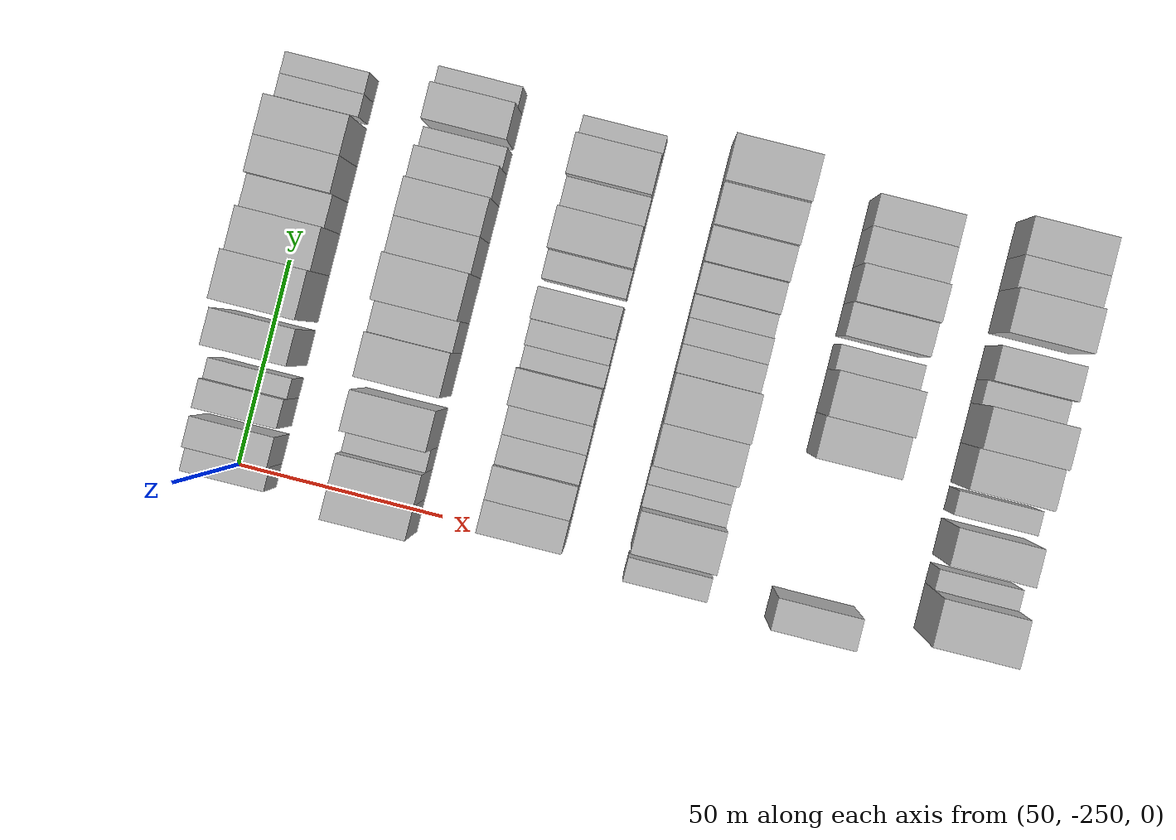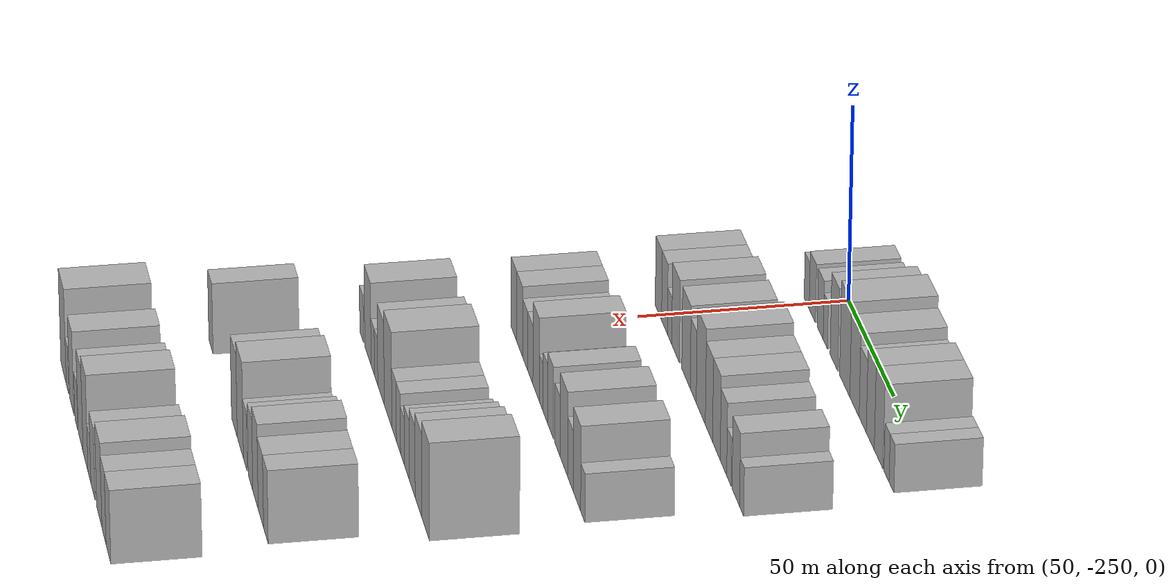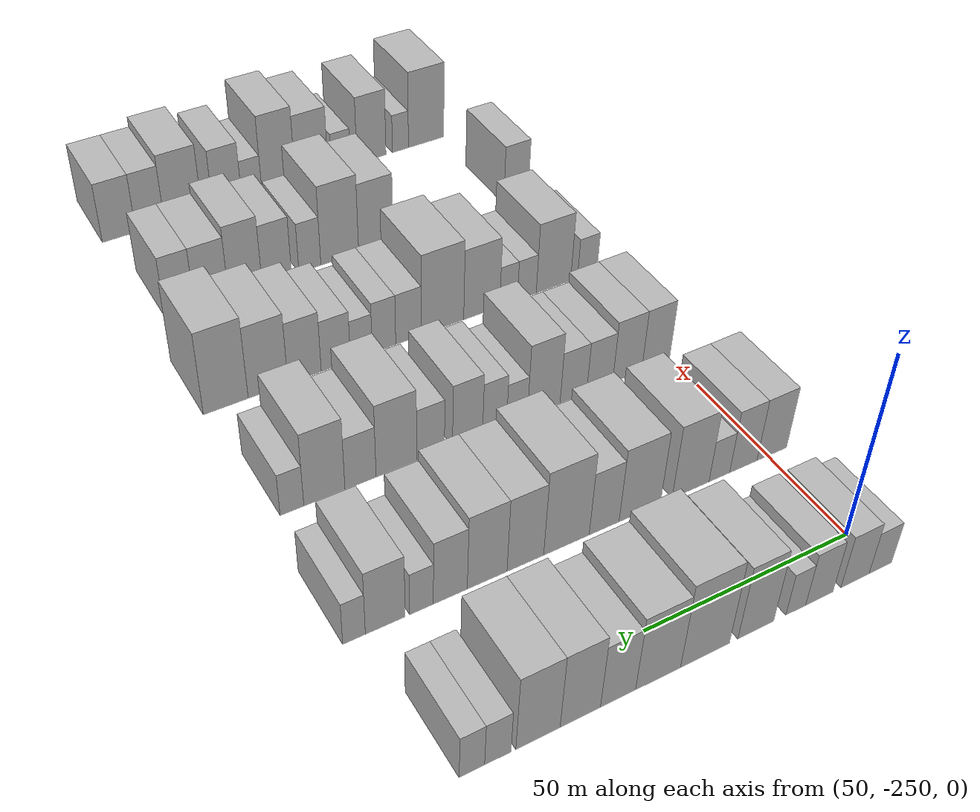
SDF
<sdf version="1.6">
 <world name="default">
  <model name="building_35">
   <static>1</static>
   <pose>50.0000 -250.0778 0 0.000000 0.000000 0.000000</pose>
   <link name="link">
    <pose>0 0 6.00 0 0 0</pose>
    <collision name="collision"><geometry><box><size>20.0000 5.8298 12.0000</size></box></geometry></collision>
    <visual name="visual">
     <cast_shadows>0</cast_shadows>
     <geometry><box><size>20.0000 5.8298 12.0000</size></box></geometry>
     <material>
      <script>
       <uri>model://HANNAS_wall/materials/scripts</uri>
       <uri>model://HANNAS_wall/materials/textures</uri>
       <name>vrc/HANNAS_wall</name>
      </script>
     </material>
    </visual>
   </link>
  </model>
  <model name="building_36">
   <static>1</static>
   <pose>50.0000 -243.5441 0 0.000000 0.000000 0.000000</pose>
   <link name="link">
    <pose>0 0 7.50 0 0 0</pose>
    <collision name="collision"><geometry><box><size>20.0000 7.2376 15.0000</size></box></geometry></collision>
    <visual name="visual">
     <cast_shadows>0</cast_shadows>
     <geometry><box><size>20.0000 7.2376 15.0000</size></box></geometry>
     <material>
      <script>
       <uri>model://HANNAS_wall/materials/scripts</uri>
       <uri>model://HANNAS_wall/materials/textures</uri>
       <name>vrc/HANNAS_wall</name>
      </script>
     </material>
    </visual>
   </link>
  </model>
  <model name="building_37">
   <static>1</static>
   <pose>50.0000 -234.4957 0 0.000000 0.000000 0.000000</pose>
   <link name="link">
    <pose>0 0 7.50 0 0 0</pose>
    <collision name="collision"><geometry><box><size>20.0000 6.8593 15.0000</size></box></geometry></collision>
    <visual name="visual">
     <cast_shadows>0</cast_shadows>
     <geometry><box><size>20.0000 6.8593 15.0000</size></box></geometry>
     <material>
      <script>
       <uri>model://HANNAS_wall/materials/scripts</uri>
       <uri>model://HANNAS_wall/materials/textures</uri>
       <name>vrc/HANNAS_wall</name>
      </script>
     </material>
    </visual>
   </link>
  </model>
  <model name="building_38">
   <static>1</static>
   <pose>50.0000 -228.6237 0 0.000000 0.000000 0.000000</pose>
   <link name="link">
    <pose>0 0 6.00 0 0 0</pose>
    <collision name="collision"><geometry><box><size>20.0000 4.8848 12.0000</size></box></geometry></collision>
    <visual name="visual">
     <cast_shadows>0</cast_shadows>
     <geometry><box><size>20.0000 4.8848 12.0000</size></box></geometry>
     <material>
      <script>
       <uri>model://HANNAS_wall/materials/scripts</uri>
       <uri>model://HANNAS_wall/materials/textures</uri>
       <name>vrc/HANNAS_wall</name>
      </script>
     </material>
    </visual>
   </link>
  </model>
  <model name="building_39">
   <static>1</static>
   <pose>50.0000 -218.8807 0 0.000000 0.000000 0.000000</pose>
   <link name="link">
    <pose>0 0 10.50 0 0 0</pose>
    <collision name="collision"><geometry><box><size>20.0000 8.6011 21.0000</size></box></geometry></collision>
    <visual name="visual">
     <cast_shadows>0</cast_shadows>
     <geometry><box><size>20.0000 8.6011 21.0000</size></box></geometry>
     <material>
      <script>
       <uri>model://HANNAS_wall/materials/scripts</uri>
       <uri>model://HANNAS_wall/materials/textures</uri>
       <name>vrc/HANNAS_wall</name>
      </script>
     </material>
    </visual>
   </link>
  </model>
  <model name="building_40">
   <static>1</static>
   <pose>50.0000 -206.8810 0 0.000000 0.000000 0.000000</pose>
   <link name="link">
    <pose>0 0 12.00 0 0 0</pose>
    <collision name="collision"><geometry><box><size>20.0000 11.3985 24.0000</size></box></geometry></collision>
    <visual name="visual">
     <cast_shadows>0</cast_shadows>
     <geometry><box><size>20.0000 11.3985 24.0000</size></box></geometry>
     <material>
      <script>
       <uri>model://HANNAS_wall/materials/scripts</uri>
       <uri>model://HANNAS_wall/materials/textures</uri>
       <name>vrc/HANNAS_wall</name>
      </script>
     </material>
    </visual>
   </link>
  </model>
  <model name="building_41">
   <static>1</static>
   <pose>50.0000 -196.0865 0 0.000000 0.000000 0.000000</pose>
   <link name="link">
    <pose>0 0 10.50 0 0 0</pose>
    <collision name="collision"><geometry><box><size>20.0000 10.1903 21.0000</size></box></geometry></collision>
    <visual name="visual">
     <cast_shadows>0</cast_shadows>
     <geometry><box><size>20.0000 10.1903 21.0000</size></box></geometry>
     <material>
      <script>
       <uri>model://HANNAS_wall/materials/scripts</uri>
       <uri>model://HANNAS_wall/materials/textures</uri>
       <name>vrc/HANNAS_wall</name>
      </script>
     </material>
    </visual>
   </link>
  </model>
  <model name="building_42">
   <static>1</static>
   <pose>50.0000 -187.1090 0 0.000000 0.000000 0.000000</pose>
   <link name="link">
    <pose>0 0 9.00 0 0 0</pose>
    <collision name="collision"><geometry><box><size>20.0000 7.7648 18.0000</size></box></geometry></collision>
    <visual name="visual">
     <cast_shadows>0</cast_shadows>
     <geometry><box><size>20.0000 7.7648 18.0000</size></box></geometry>
     <material>
      <script>
       <uri>model://HANNAS_wall/materials/scripts</uri>
       <uri>model://HANNAS_wall/materials/textures</uri>
       <name>vrc/HANNAS_wall</name>
      </script>
     </material>
    </visual>
   </link>
  </model>
  <model name="building_43">
   <static>1</static>
   <pose>50.0000 -178.8734 0 0.000000 0.000000 0.000000</pose>
   <link name="link">
    <pose>0 0 10.50 0 0 0</pose>
    <collision name="collision"><geometry><box><size>20.0000 8.7064 21.0000</size></box></geometry></collision>
    <visual name="visual">
     <cast_shadows>0</cast_shadows>
     <geometry><box><size>20.0000 8.7064 21.0000</size></box></geometry>
     <material>
      <script>
       <uri>model://HANNAS_wall/materials/scripts</uri>
       <uri>model://HANNAS_wall/materials/textures</uri>
       <name>vrc/HANNAS_wall</name>
      </script>
     </material>
    </visual>
   </link>
  </model>
  <model name="building_44">
   <static>1</static>
   <pose>50.0000 -169.8590 0 0.000000 0.000000 0.000000</pose>
   <link name="link">
    <pose>0 0 10.50 0 0 0</pose>
    <collision name="collision"><geometry><box><size>20.0000 9.3222 21.0000</size></box></geometry></collision>
    <visual name="visual">
     <cast_shadows>0</cast_shadows>
     <geometry><box><size>20.0000 9.3222 21.0000</size></box></geometry>
     <material>
      <script>
       <uri>model://HANNAS_wall/materials/scripts</uri>
       <uri>model://HANNAS_wall/materials/textures</uri>
       <name>vrc/HANNAS_wall</name>
      </script>
     </material>
    </visual>
   </link>
  </model>
  <model name="building_45">
   <static>1</static>
   <pose>50.0000 -161.4854 0 0.000000 0.000000 0.000000</pose>
   <link name="link">
    <pose>0 0 6.00 0 0 0</pose>
    <collision name="collision"><geometry><box><size>20.0000 5.4250 12.0000</size></box></geometry></collision>
    <visual name="visual">
     <cast_shadows>0</cast_shadows>
     <geometry><box><size>20.0000 5.4250 12.0000</size></box></geometry>
     <material>
      <script>
       <uri>model://HANNAS_wall/materials/scripts</uri>
       <uri>model://HANNAS_wall/materials/textures</uri>
       <name>vrc/HANNAS_wall</name>
      </script>
     </material>
    </visual>
   </link>
  </model>
  <model name="building_46">
   <static>1</static>
   <pose>50.0000 -156.1896 0 0.000000 0.000000 0.000000</pose>
   <link name="link">
    <pose>0 0 6.00 0 0 0</pose>
    <collision name="collision"><geometry><box><size>20.0000 5.1666 12.0000</size></box></geometry></collision>
    <visual name="visual">
     <cast_shadows>0</cast_shadows>
     <geometry><box><size>20.0000 5.1666 12.0000</size></box></geometry>
     <material>
      <script>
       <uri>model://HANNAS_wall/materials/scripts</uri>
       <uri>model://HANNAS_wall/materials/textures</uri>
       <name>vrc/HANNAS_wall</name>
      </script>
     </material>
    </visual>
   </link>
  </model>
  <model name="building_160">
   <static>1</static>
   <pose>85.0000 -251.0333 0 0.000000 0.000000 0.000000</pose>
   <link name="link">
    <pose>0 0 9.00 0 0 0</pose>
    <collision name="collision"><geometry><box><size>20.0000 8.0752 18.0000</size></box></geometry></collision>
    <visual name="visual">
     <cast_shadows>0</cast_shadows>
     <geometry><box><size>20.0000 8.0752 18.0000</size></box></geometry>
     <material>
      <script>
       <uri>model://HANNAS_wall/materials/scripts</uri>
       <uri>model://HANNAS_wall/materials/textures</uri>
       <name>vrc/HANNAS_wall</name>
      </script>
     </material>
    </visual>
   </link>
  </model>
  <model name="building_161">
   <static>1</static>
   <pose>85.0000 -243.3451 0 0.000000 0.000000 0.000000</pose>
   <link name="link">
    <pose>0 0 9.00 0 0 0</pose>
    <collision name="collision"><geometry><box><size>20.0000 7.3012 18.0000</size></box></geometry></collision>
    <visual name="visual">
     <cast_shadows>0</cast_shadows>
     <geometry><box><size>20.0000 7.3012 18.0000</size></box></geometry>
     <material>
      <script>
       <uri>model://HANNAS_wall/materials/scripts</uri>
       <uri>model://HANNAS_wall/materials/textures</uri>
       <name>vrc/HANNAS_wall</name>
      </script>
     </material>
    </visual>
   </link>
  </model>
  <model name="building_162">
   <static>1</static>
   <pose>85.0000 -236.9647 0 0.000000 0.000000 0.000000</pose>
   <link name="link">
    <pose>0 0 6.00 0 0 0</pose>
    <collision name="collision"><geometry><box><size>20.0000 5.4596 12.0000</size></box></geometry></collision>
    <visual name="visual">
     <cast_shadows>0</cast_shadows>
     <geometry><box><size>20.0000 5.4596 12.0000</size></box></geometry>
     <material>
      <script>
       <uri>model://HANNAS_wall/materials/scripts</uri>
       <uri>model://HANNAS_wall/materials/textures</uri>
       <name>vrc/HANNAS_wall</name>
      </script>
     </material>
    </visual>
   </link>
  </model>
  <model name="building_163">
   <static>1</static>
   <pose>85.0000 -229.4641 0 0.000000 0.000000 0.000000</pose>
   <link name="link">
    <pose>0 0 10.50 0 0 0</pose>
    <collision name="collision"><geometry><box><size>20.0000 9.5417 21.0000</size></box></geometry></collision>
    <visual name="visual">
     <cast_shadows>0</cast_shadows>
     <geometry><box><size>20.0000 9.5417 21.0000</size></box></geometry>
     <material>
      <script>
       <uri>model://HANNAS_wall/materials/scripts</uri>
       <uri>model://HANNAS_wall/materials/textures</uri>
       <name>vrc/HANNAS_wall</name>
      </script>
     </material>
    </visual>
   </link>
  </model>
  <model name="building_164">
   <static>1</static>
   <pose>85.0000 -216.5025 0 0.000000 0.000000 0.000000</pose>
   <link name="link">
    <pose>0 0 10.50 0 0 0</pose>
    <collision name="collision"><geometry><box><size>20.0000 10.3813 21.0000</size></box></geometry></collision>
    <visual name="visual">
     <cast_shadows>0</cast_shadows>
     <geometry><box><size>20.0000 10.3813 21.0000</size></box></geometry>
     <material>
      <script>
       <uri>model://HANNAS_wall/materials/scripts</uri>
       <uri>model://HANNAS_wall/materials/textures</uri>
       <name>vrc/HANNAS_wall</name>
      </script>
     </material>
    </visual>
   </link>
  </model>
  <model name="building_165">
   <static>1</static>
   <pose>85.0000 -207.6466 0 0.000000 0.000000 0.000000</pose>
   <link name="link">
    <pose>0 0 9.00 0 0 0</pose>
    <collision name="collision"><geometry><box><size>20.0000 7.3305 18.0000</size></box></geometry></collision>
    <visual name="visual">
     <cast_shadows>0</cast_shadows>
     <geometry><box><size>20.0000 7.3305 18.0000</size></box></geometry>
     <material>
      <script>
       <uri>model://HANNAS_wall/materials/scripts</uri>
       <uri>model://HANNAS_wall/materials/textures</uri>
       <name>vrc/HANNAS_wall</name>
      </script>
     </material>
    </visual>
   </link>
  </model>
  <model name="building_166">
   <static>1</static>
   <pose>85.0000 -198.5180 0 0.000000 0.000000 0.000000</pose>
   <link name="link">
    <pose>0 0 12.00 0 0 0</pose>
    <collision name="collision"><geometry><box><size>20.0000 10.9268 24.0000</size></box></geometry></collision>
    <visual name="visual">
     <cast_shadows>0</cast_shadows>
     <geometry><box><size>20.0000 10.9268 24.0000</size></box></geometry>
     <material>
      <script>
       <uri>model://HANNAS_wall/materials/scripts</uri>
       <uri>model://HANNAS_wall/materials/textures</uri>
       <name>vrc/HANNAS_wall</name>
      </script>
     </material>
    </visual>
   </link>
  </model>
  <model name="building_167">
   <static>1</static>
   <pose>85.0000 -188.7637 0 0.000000 0.000000 0.000000</pose>
   <link name="link">
    <pose>0 0 10.50 0 0 0</pose>
    <collision name="collision"><geometry><box><size>20.0000 8.5818 21.0000</size></box></geometry></collision>
    <visual name="visual">
     <cast_shadows>0</cast_shadows>
     <geometry><box><size>20.0000 8.5818 21.0000</size></box></geometry>
     <material>
      <script>
       <uri>model://HANNAS_wall/materials/scripts</uri>
       <uri>model://HANNAS_wall/materials/textures</uri>
       <name>vrc/HANNAS_wall</name>
      </script>
     </material>
    </visual>
   </link>
  </model>
  <model name="building_168">
   <static>1</static>
   <pose>85.0000 -179.9224 0 0.000000 0.000000 0.000000</pose>
   <link name="link">
    <pose>0 0 10.50 0 0 0</pose>
    <collision name="collision"><geometry><box><size>20.0000 9.1008 21.0000</size></box></geometry></collision>
    <visual name="visual">
     <cast_shadows>0</cast_shadows>
     <geometry><box><size>20.0000 9.1008 21.0000</size></box></geometry>
     <material>
      <script>
       <uri>model://HANNAS_wall/materials/scripts</uri>
       <uri>model://HANNAS_wall/materials/textures</uri>
       <name>vrc/HANNAS_wall</name>
      </script>
     </material>
    </visual>
   </link>
  </model>
  <model name="building_169">
   <static>1</static>
   <pose>85.0000 -171.5720 0 0.000000 0.000000 0.000000</pose>
   <link name="link">
    <pose>0 0 9.00 0 0 0</pose>
    <collision name="collision"><geometry><box><size>20.0000 7.6000 18.0000</size></box></geometry></collision>
    <visual name="visual">
     <cast_shadows>0</cast_shadows>
     <geometry><box><size>20.0000 7.6000 18.0000</size></box></geometry>
     <material>
      <script>
       <uri>model://HANNAS_wall/materials/scripts</uri>
       <uri>model://HANNAS_wall/materials/textures</uri>
       <name>vrc/HANNAS_wall</name>
      </script>
     </material>
    </visual>
   </link>
  </model>
  <model name="building_170">
   <static>1</static>
   <pose>85.0000 -165.1580 0 0.000000 0.000000 0.000000</pose>
   <link name="link">
    <pose>0 0 6.00 0 0 0</pose>
    <collision name="collision"><geometry><box><size>20.0000 5.2280 12.0000</size></box></geometry></collision>
    <visual name="visual">
     <cast_shadows>0</cast_shadows>
     <geometry><box><size>20.0000 5.2280 12.0000</size></box></geometry>
     <material>
      <script>
       <uri>model://HANNAS_wall/materials/scripts</uri>
       <uri>model://HANNAS_wall/materials/textures</uri>
       <name>vrc/HANNAS_wall</name>
      </script>
     </material>
    </visual>
   </link>
  </model>
  <model name="building_171">
   <static>1</static>
   <pose>85.0000 -157.2514 0 0.000000 0.000000 0.000000</pose>
   <link name="link">
    <pose>0 0 9.00 0 0 0</pose>
    <collision name="collision"><geometry><box><size>20.0000 8.5853 18.0000</size></box></geometry></collision>
    <visual name="visual">
     <cast_shadows>0</cast_shadows>
     <geometry><box><size>20.0000 8.5853 18.0000</size></box></geometry>
     <material>
      <script>
       <uri>model://HANNAS_wall/materials/scripts</uri>
       <uri>model://HANNAS_wall/materials/textures</uri>
       <name>vrc/HANNAS_wall</name>
      </script>
     </material>
    </visual>
   </link>
  </model>
  <model name="building_172">
   <static>1</static>
   <pose>85.0000 -150.5540 0 0.000000 0.000000 0.000000</pose>
   <link name="link">
    <pose>0 0 6.00 0 0 0</pose>
    <collision name="collision"><geometry><box><size>20.0000 4.8095 12.0000</size></box></geometry></collision>
    <visual name="visual">
     <cast_shadows>0</cast_shadows>
     <geometry><box><size>20.0000 4.8095 12.0000</size></box></geometry>
     <material>
      <script>
       <uri>model://HANNAS_wall/materials/scripts</uri>
       <uri>model://HANNAS_wall/materials/textures</uri>
       <name>vrc/HANNAS_wall</name>
      </script>
     </material>
    </visual>
   </link>
  </model>
  <model name="building_289">
   <static>1</static>
   <pose>120.0000 -245.4531 0 0.000000 0.000000 0.000000</pose>
   <link name="link">
    <pose>0 0 9.00 0 0 0</pose>
    <collision name="collision"><geometry><box><size>20.0000 7.7839 18.0000</size></box></geometry></collision>
    <visual name="visual">
     <cast_shadows>0</cast_shadows>
     <geometry><box><size>20.0000 7.7839 18.0000</size></box></geometry>
     <material>
      <script>
       <uri>model://HANNAS_wall/materials/scripts</uri>
       <uri>model://HANNAS_wall/materials/textures</uri>
       <name>vrc/HANNAS_wall</name>
      </script>
     </material>
    </visual>
   </link>
  </model>
  <model name="building_290">
   <static>1</static>
   <pose>120.0000 -237.5534 0 0.000000 0.000000 0.000000</pose>
   <link name="link">
    <pose>0 0 9.00 0 0 0</pose>
    <collision name="collision"><geometry><box><size>20.0000 8.0156 18.0000</size></box></geometry></collision>
    <visual name="visual">
     <cast_shadows>0</cast_shadows>
     <geometry><box><size>20.0000 8.0156 18.0000</size></box></geometry>
     <material>
      <script>
       <uri>model://HANNAS_wall/materials/scripts</uri>
       <uri>model://HANNAS_wall/materials/textures</uri>
       <name>vrc/HANNAS_wall</name>
      </script>
     </material>
    </visual>
   </link>
  </model>
  <model name="building_291">
   <static>1</static>
   <pose>120.0000 -230.0237 0 0.000000 0.000000 0.000000</pose>
   <link name="link">
    <pose>0 0 7.50 0 0 0</pose>
    <collision name="collision"><geometry><box><size>20.0000 7.0438 15.0000</size></box></geometry></collision>
    <visual name="visual">
     <cast_shadows>0</cast_shadows>
     <geometry><box><size>20.0000 7.0438 15.0000</size></box></geometry>
     <material>
      <script>
       <uri>model://HANNAS_wall/materials/scripts</uri>
       <uri>model://HANNAS_wall/materials/textures</uri>
       <name>vrc/HANNAS_wall</name>
      </script>
     </material>
    </visual>
   </link>
  </model>
  <model name="building_292">
   <static>1</static>
   <pose>120.0000 -222.9508 0 0.000000 0.000000 0.000000</pose>
   <link name="link">
    <pose>0 0 7.50 0 0 0</pose>
    <collision name="collision"><geometry><box><size>20.0000 7.1021 15.0000</size></box></geometry></collision>
    <visual name="visual">
     <cast_shadows>0</cast_shadows>
     <geometry><box><size>20.0000 7.1021 15.0000</size></box></geometry>
     <material>
      <script>
       <uri>model://HANNAS_wall/materials/scripts</uri>
       <uri>model://HANNAS_wall/materials/textures</uri>
       <name>vrc/HANNAS_wall</name>
      </script>
     </material>
    </visual>
   </link>
  </model>
  <model name="building_293">
   <static>1</static>
   <pose>120.0000 -215.1078 0 0.000000 0.000000 0.000000</pose>
   <link name="link">
    <pose>0 0 10.50 0 0 0</pose>
    <collision name="collision"><geometry><box><size>20.0000 8.5838 21.0000</size></box></geometry></collision>
    <visual name="visual">
     <cast_shadows>0</cast_shadows>
     <geometry><box><size>20.0000 8.5838 21.0000</size></box></geometry>
     <material>
      <script>
       <uri>model://HANNAS_wall/materials/scripts</uri>
       <uri>model://HANNAS_wall/materials/textures</uri>
       <name>vrc/HANNAS_wall</name>
      </script>
     </material>
    </visual>
   </link>
  </model>
  <model name="building_294">
   <static>1</static>
   <pose>120.0000 -208.1303 0 0.000000 0.000000 0.000000</pose>
   <link name="link">
    <pose>0 0 6.00 0 0 0</pose>
    <collision name="collision"><geometry><box><size>20.0000 5.3713 12.0000</size></box></geometry></collision>
    <visual name="visual">
     <cast_shadows>0</cast_shadows>
     <geometry><box><size>20.0000 5.3713 12.0000</size></box></geometry>
     <material>
      <script>
       <uri>model://HANNAS_wall/materials/scripts</uri>
       <uri>model://HANNAS_wall/materials/textures</uri>
       <name>vrc/HANNAS_wall</name>
      </script>
     </material>
    </visual>
   </link>
  </model>
  <model name="building_295">
   <static>1</static>
   <pose>120.0000 -202.3879 0 0.000000 0.000000 0.000000</pose>
   <link name="link">
    <pose>0 0 7.50 0 0 0</pose>
    <collision name="collision"><geometry><box><size>20.0000 6.1134 15.0000</size></box></geometry></collision>
    <visual name="visual">
     <cast_shadows>0</cast_shadows>
     <geometry><box><size>20.0000 6.1134 15.0000</size></box></geometry>
     <material>
      <script>
       <uri>model://HANNAS_wall/materials/scripts</uri>
       <uri>model://HANNAS_wall/materials/textures</uri>
       <name>vrc/HANNAS_wall</name>
      </script>
     </material>
    </visual>
   </link>
  </model>
  <model name="building_296">
   <static>1</static>
   <pose>120.0000 -195.5599 0 0.000000 0.000000 0.000000</pose>
   <link name="link">
    <pose>0 0 9.00 0 0 0</pose>
    <collision name="collision"><geometry><box><size>20.0000 7.5426 18.0000</size></box></geometry></collision>
    <visual name="visual">
     <cast_shadows>0</cast_shadows>
     <geometry><box><size>20.0000 7.5426 18.0000</size></box></geometry>
     <material>
      <script>
       <uri>model://HANNAS_wall/materials/scripts</uri>
       <uri>model://HANNAS_wall/materials/textures</uri>
       <name>vrc/HANNAS_wall</name>
      </script>
     </material>
    </visual>
   </link>
  </model>
  <model name="building_297">
   <static>1</static>
   <pose>120.0000 -186.3955 0 0.000000 0.000000 0.000000</pose>
   <link name="link">
    <pose>0 0 7.50 0 0 0</pose>
    <collision name="collision"><geometry><box><size>20.0000 6.7862 15.0000</size></box></geometry></collision>
    <visual name="visual">
     <cast_shadows>0</cast_shadows>
     <geometry><box><size>20.0000 6.7862 15.0000</size></box></geometry>
     <material>
      <script>
       <uri>model://HANNAS_wall/materials/scripts</uri>
       <uri>model://HANNAS_wall/materials/textures</uri>
       <name>vrc/HANNAS_wall</name>
      </script>
     </material>
    </visual>
   </link>
  </model>
  <model name="building_298">
   <static>1</static>
   <pose>120.0000 -178.1068 0 0.000000 0.000000 0.000000</pose>
   <link name="link">
    <pose>0 0 10.50 0 0 0</pose>
    <collision name="collision"><geometry><box><size>20.0000 9.7913 21.0000</size></box></geometry></collision>
    <visual name="visual">
     <cast_shadows>0</cast_shadows>
     <geometry><box><size>20.0000 9.7913 21.0000</size></box></geometry>
     <material>
      <script>
       <uri>model://HANNAS_wall/materials/scripts</uri>
       <uri>model://HANNAS_wall/materials/textures</uri>
       <name>vrc/HANNAS_wall</name>
      </script>
     </material>
    </visual>
   </link>
  </model>
  <model name="building_299">
   <static>1</static>
   <pose>120.0000 -169.5387 0 0.000000 0.000000 0.000000</pose>
   <link name="link">
    <pose>0 0 7.50 0 0 0</pose>
    <collision name="collision"><geometry><box><size>20.0000 7.3449 15.0000</size></box></geometry></collision>
    <visual name="visual">
     <cast_shadows>0</cast_shadows>
     <geometry><box><size>20.0000 7.3449 15.0000</size></box></geometry>
     <material>
      <script>
       <uri>model://HANNAS_wall/materials/scripts</uri>
       <uri>model://HANNAS_wall/materials/textures</uri>
       <name>vrc/HANNAS_wall</name>
      </script>
     </material>
    </visual>
   </link>
  </model>
  <model name="building_300">
   <static>1</static>
   <pose>120.0000 -161.1154 0 0.000000 0.000000 0.000000</pose>
   <link name="link">
    <pose>0 0 10.50 0 0 0</pose>
    <collision name="collision"><geometry><box><size>20.0000 9.5017 21.0000</size></box></geometry></collision>
    <visual name="visual">
     <cast_shadows>0</cast_shadows>
     <geometry><box><size>20.0000 9.5017 21.0000</size></box></geometry>
     <material>
      <script>
       <uri>model://HANNAS_wall/materials/scripts</uri>
       <uri>model://HANNAS_wall/materials/textures</uri>
       <name>vrc/HANNAS_wall</name>
      </script>
     </material>
    </visual>
   </link>
  </model>
  <model name="building_301">
   <static>1</static>
   <pose>120.0000 -153.6652 0 0.000000 0.000000 0.000000</pose>
   <link name="link">
    <pose>0 0 6.00 0 0 0</pose>
    <collision name="collision"><geometry><box><size>20.0000 5.3988 12.0000</size></box></geometry></collision>
    <visual name="visual">
     <cast_shadows>0</cast_shadows>
     <geometry><box><size>20.0000 5.3988 12.0000</size></box></geometry>
     <material>
      <script>
       <uri>model://HANNAS_wall/materials/scripts</uri>
       <uri>model://HANNAS_wall/materials/textures</uri>
       <name>vrc/HANNAS_wall</name>
      </script>
     </material>
    </visual>
   </link>
  </model>
  <model name="building_417">
   <static>1</static>
   <pose>155.0000 -249.8020 0 0.000000 0.000000 0.000000</pose>
   <link name="link">
    <pose>0 0 6.00 0 0 0</pose>
    <collision name="collision"><geometry><box><size>20.0000 5.7351 12.0000</size></box></geometry></collision>
    <visual name="visual">
     <cast_shadows>0</cast_shadows>
     <geometry><box><size>20.0000 5.7351 12.0000</size></box></geometry>
     <material>
      <script>
       <uri>model://HANNAS_wall/materials/scripts</uri>
       <uri>model://HANNAS_wall/materials/textures</uri>
       <name>vrc/HANNAS_wall</name>
      </script>
     </material>
    </visual>
   </link>
  </model>
  <model name="building_418">
   <static>1</static>
   <pose>155.0000 -239.9533 0 0.000000 0.000000 0.000000</pose>
   <link name="link">
    <pose>0 0 10.50 0 0 0</pose>
    <collision name="collision"><geometry><box><size>20.0000 9.9623 21.0000</size></box></geometry></collision>
    <visual name="visual">
     <cast_shadows>0</cast_shadows>
     <geometry><box><size>20.0000 9.9623 21.0000</size></box></geometry>
     <material>
      <script>
       <uri>model://HANNAS_wall/materials/scripts</uri>
       <uri>model://HANNAS_wall/materials/textures</uri>
       <name>vrc/HANNAS_wall</name>
      </script>
     </material>
    </visual>
   </link>
  </model>
  <model name="building_419">
   <static>1</static>
   <pose>155.0000 -232.2847 0 0.000000 0.000000 0.000000</pose>
   <link name="link">
    <pose>0 0 6.00 0 0 0</pose>
    <collision name="collision"><geometry><box><size>20.0000 5.3750 12.0000</size></box></geometry></collision>
    <visual name="visual">
     <cast_shadows>0</cast_shadows>
     <geometry><box><size>20.0000 5.3750 12.0000</size></box></geometry>
     <material>
      <script>
       <uri>model://HANNAS_wall/materials/scripts</uri>
       <uri>model://HANNAS_wall/materials/textures</uri>
       <name>vrc/HANNAS_wall</name>
      </script>
     </material>
    </visual>
   </link>
  </model>
  <model name="building_420">
   <static>1</static>
   <pose>155.0000 -227.1031 0 0.000000 0.000000 0.000000</pose>
   <link name="link">
    <pose>0 0 6.00 0 0 0</pose>
    <collision name="collision"><geometry><box><size>20.0000 4.9882 12.0000</size></box></geometry></collision>
    <visual name="visual">
     <cast_shadows>0</cast_shadows>
     <geometry><box><size>20.0000 4.9882 12.0000</size></box></geometry>
     <material>
      <script>
       <uri>model://HANNAS_wall/materials/scripts</uri>
       <uri>model://HANNAS_wall/materials/textures</uri>
       <name>vrc/HANNAS_wall</name>
      </script>
     </material>
    </visual>
   </link>
  </model>
  <model name="building_421">
   <static>1</static>
   <pose>155.0000 -219.6140 0 0.000000 0.000000 0.000000</pose>
   <link name="link">
    <pose>0 0 10.50 0 0 0</pose>
    <collision name="collision"><geometry><box><size>20.0000 9.9899 21.0000</size></box></geometry></collision>
    <visual name="visual">
     <cast_shadows>0</cast_shadows>
     <geometry><box><size>20.0000 9.9899 21.0000</size></box></geometry>
     <material>
      <script>
       <uri>model://HANNAS_wall/materials/scripts</uri>
       <uri>model://HANNAS_wall/materials/textures</uri>
       <name>vrc/HANNAS_wall</name>
      </script>
     </material>
    </visual>
   </link>
  </model>
  <model name="building_422">
   <static>1</static>
   <pose>155.0000 -208.8524 0 0.000000 0.000000 0.000000</pose>
   <link name="link">
    <pose>0 0 12.00 0 0 0</pose>
    <collision name="collision"><geometry><box><size>20.0000 11.5332 24.0000</size></box></geometry></collision>
    <visual name="visual">
     <cast_shadows>0</cast_shadows>
     <geometry><box><size>20.0000 11.5332 24.0000</size></box></geometry>
     <material>
      <script>
       <uri>model://HANNAS_wall/materials/scripts</uri>
       <uri>model://HANNAS_wall/materials/textures</uri>
       <name>vrc/HANNAS_wall</name>
      </script>
     </material>
    </visual>
   </link>
  </model>
  <model name="building_423">
   <static>1</static>
   <pose>155.0000 -199.7000 0 0.000000 0.000000 0.000000</pose>
   <link name="link">
    <pose>0 0 7.50 0 0 0</pose>
    <collision name="collision"><geometry><box><size>20.0000 6.7715 15.0000</size></box></geometry></collision>
    <visual name="visual">
     <cast_shadows>0</cast_shadows>
     <geometry><box><size>20.0000 6.7715 15.0000</size></box></geometry>
     <material>
      <script>
       <uri>model://HANNAS_wall/materials/scripts</uri>
       <uri>model://HANNAS_wall/materials/textures</uri>
       <name>vrc/HANNAS_wall</name>
      </script>
     </material>
    </visual>
   </link>
  </model>
  <model name="building_424">
   <static>1</static>
   <pose>155.0000 -193.2313 0 0.000000 0.000000 0.000000</pose>
   <link name="link">
    <pose>0 0 7.50 0 0 0</pose>
    <collision name="collision"><geometry><box><size>20.0000 6.1660 15.0000</size></box></geometry></collision>
    <visual name="visual">
     <cast_shadows>0</cast_shadows>
     <geometry><box><size>20.0000 6.1660 15.0000</size></box></geometry>
     <material>
      <script>
       <uri>model://HANNAS_wall/materials/scripts</uri>
       <uri>model://HANNAS_wall/materials/textures</uri>
       <name>vrc/HANNAS_wall</name>
      </script>
     </material>
    </visual>
   </link>
  </model>
  <model name="building_425">
   <static>1</static>
   <pose>155.0000 -187.3224 0 0.000000 0.000000 0.000000</pose>
   <link name="link">
    <pose>0 0 6.00 0 0 0</pose>
    <collision name="collision"><geometry><box><size>20.0000 5.6519 12.0000</size></box></geometry></collision>
    <visual name="visual">
     <cast_shadows>0</cast_shadows>
     <geometry><box><size>20.0000 5.6519 12.0000</size></box></geometry>
     <material>
      <script>
       <uri>model://HANNAS_wall/materials/scripts</uri>
       <uri>model://HANNAS_wall/materials/textures</uri>
       <name>vrc/HANNAS_wall</name>
      </script>
     </material>
    </visual>
   </link>
  </model>
  <model name="building_426">
   <static>1</static>
   <pose>155.0000 -180.7750 0 0.000000 0.000000 0.000000</pose>
   <link name="link">
    <pose>0 0 7.50 0 0 0</pose>
    <collision name="collision"><geometry><box><size>20.0000 7.4429 15.0000</size></box></geometry></collision>
    <visual name="visual">
     <cast_shadows>0</cast_shadows>
     <geometry><box><size>20.0000 7.4429 15.0000</size></box></geometry>
     <material>
      <script>
       <uri>model://HANNAS_wall/materials/scripts</uri>
       <uri>model://HANNAS_wall/materials/textures</uri>
       <name>vrc/HANNAS_wall</name>
      </script>
     </material>
    </visual>
   </link>
  </model>
  <model name="building_427">
   <static>1</static>
   <pose>155.0000 -172.8755 0 0.000000 0.000000 0.000000</pose>
   <link name="link">
    <pose>0 0 9.00 0 0 0</pose>
    <collision name="collision"><geometry><box><size>20.0000 8.3561 18.0000</size></box></geometry></collision>
    <visual name="visual">
     <cast_shadows>0</cast_shadows>
     <geometry><box><size>20.0000 8.3561 18.0000</size></box></geometry>
     <material>
      <script>
       <uri>model://HANNAS_wall/materials/scripts</uri>
       <uri>model://HANNAS_wall/materials/textures</uri>
       <name>vrc/HANNAS_wall</name>
      </script>
     </material>
    </visual>
   </link>
  </model>
  <model name="building_428">
   <static>1</static>
   <pose>155.0000 -163.8067 0 0.000000 0.000000 0.000000</pose>
   <link name="link">
    <pose>0 0 10.50 0 0 0</pose>
    <collision name="collision"><geometry><box><size>20.0000 9.7814 21.0000</size></box></geometry></collision>
    <visual name="visual">
     <cast_shadows>0</cast_shadows>
     <geometry><box><size>20.0000 9.7814 21.0000</size></box></geometry>
     <material>
      <script>
       <uri>model://HANNAS_wall/materials/scripts</uri>
       <uri>model://HANNAS_wall/materials/textures</uri>
       <name>vrc/HANNAS_wall</name>
      </script>
     </material>
    </visual>
   </link>
  </model>
  <model name="building_429">
   <static>1</static>
   <pose>155.0000 -153.5170 0 0.000000 0.000000 0.000000</pose>
   <link name="link">
    <pose>0 0 12.00 0 0 0</pose>
    <collision name="collision"><geometry><box><size>20.0000 10.7980 24.0000</size></box></geometry></collision>
    <visual name="visual">
     <cast_shadows>0</cast_shadows>
     <geometry><box><size>20.0000 10.7980 24.0000</size></box></geometry>
     <material>
      <script>
       <uri>model://HANNAS_wall/materials/scripts</uri>
       <uri>model://HANNAS_wall/materials/textures</uri>
       <name>vrc/HANNAS_wall</name>
      </script>
     </material>
    </visual>
   </link>
  </model>
  <model name="building_547">
   <static>1</static>
   <pose>190.0000 -250.5116 0 0.000000 0.000000 0.000000</pose>
   <link name="link">
    <pose>0 0 9.00 0 0 0</pose>
    <collision name="collision"><geometry><box><size>20.0000 7.5310 18.0000</size></box></geometry></collision>
    <visual name="visual">
     <cast_shadows>0</cast_shadows>
     <geometry><box><size>20.0000 7.5310 18.0000</size></box></geometry>
     <material>
      <script>
       <uri>model://HANNAS_wall/materials/scripts</uri>
       <uri>model://HANNAS_wall/materials/textures</uri>
       <name>vrc/HANNAS_wall</name>
      </script>
     </material>
    </visual>
   </link>
  </model>
  <model name="building_548">
   <static>1</static>
   <pose>190.0000 -209.0622 0 0.000000 0.000000 0.000000</pose>
   <link name="link">
    <pose>0 0 10.50 0 0 0</pose>
    <collision name="collision"><geometry><box><size>20.0000 9.7893 21.0000</size></box></geometry></collision>
    <visual name="visual">
     <cast_shadows>0</cast_shadows>
     <geometry><box><size>20.0000 9.7893 21.0000</size></box></geometry>
     <material>
      <script>
       <uri>model://HANNAS_wall/materials/scripts</uri>
       <uri>model://HANNAS_wall/materials/textures</uri>
       <name>vrc/HANNAS_wall</name>
      </script>
     </material>
    </visual>
   </link>
  </model>
  <model name="building_549">
   <static>1</static>
   <pose>190.0000 -198.9039 0 0.000000 0.000000 0.000000</pose>
   <link name="link">
    <pose>0 0 12.00 0 0 0</pose>
    <collision name="collision"><geometry><box><size>20.0000 10.5274 24.0000</size></box></geometry></collision>
    <visual name="visual">
     <cast_shadows>0</cast_shadows>
     <geometry><box><size>20.0000 10.5274 24.0000</size></box></geometry>
     <material>
      <script>
       <uri>model://HANNAS_wall/materials/scripts</uri>
       <uri>model://HANNAS_wall/materials/textures</uri>
       <name>vrc/HANNAS_wall</name>
      </script>
     </material>
    </visual>
   </link>
  </model>
  <model name="building_550">
   <static>1</static>
   <pose>190.0000 -190.6328 0 0.000000 0.000000 0.000000</pose>
   <link name="link">
    <pose>0 0 7.50 0 0 0</pose>
    <collision name="collision"><geometry><box><size>20.0000 6.0146 15.0000</size></box></geometry></collision>
    <visual name="visual">
     <cast_shadows>0</cast_shadows>
     <geometry><box><size>20.0000 6.0146 15.0000</size></box></geometry>
     <material>
      <script>
       <uri>model://HANNAS_wall/materials/scripts</uri>
       <uri>model://HANNAS_wall/materials/textures</uri>
       <name>vrc/HANNAS_wall</name>
      </script>
     </material>
    </visual>
   </link>
  </model>
  <model name="building_551">
   <static>1</static>
   <pose>190.0000 -181.6719 0 0.000000 0.000000 0.000000</pose>
   <link name="link">
    <pose>0 0 9.00 0 0 0</pose>
    <collision name="collision"><geometry><box><size>20.0000 7.9073 18.0000</size></box></geometry></collision>
    <visual name="visual">
     <cast_shadows>0</cast_shadows>
     <geometry><box><size>20.0000 7.9073 18.0000</size></box></geometry>
     <material>
      <script>
       <uri>model://HANNAS_wall/materials/scripts</uri>
       <uri>model://HANNAS_wall/materials/textures</uri>
       <name>vrc/HANNAS_wall</name>
      </script>
     </material>
    </visual>
   </link>
  </model>
  <model name="building_552">
   <static>1</static>
   <pose>190.0000 -173.2849 0 0.000000 0.000000 0.000000</pose>
   <link name="link">
    <pose>0 0 10.50 0 0 0</pose>
    <collision name="collision"><geometry><box><size>20.0000 8.8668 21.0000</size></box></geometry></collision>
    <visual name="visual">
     <cast_shadows>0</cast_shadows>
     <geometry><box><size>20.0000 8.8668 21.0000</size></box></geometry>
     <material>
      <script>
       <uri>model://HANNAS_wall/materials/scripts</uri>
       <uri>model://HANNAS_wall/materials/textures</uri>
       <name>vrc/HANNAS_wall</name>
      </script>
     </material>
    </visual>
   </link>
  </model>
  <model name="building_553">
   <static>1</static>
   <pose>190.0000 -164.4238 0 0.000000 0.000000 0.000000</pose>
   <link name="link">
    <pose>0 0 9.00 0 0 0</pose>
    <collision name="collision"><geometry><box><size>20.0000 8.8554 18.0000</size></box></geometry></collision>
    <visual name="visual">
     <cast_shadows>0</cast_shadows>
     <geometry><box><size>20.0000 8.8554 18.0000</size></box></geometry>
     <material>
      <script>
       <uri>model://HANNAS_wall/materials/scripts</uri>
       <uri>model://HANNAS_wall/materials/textures</uri>
       <name>vrc/HANNAS_wall</name>
      </script>
     </material>
    </visual>
   </link>
  </model>
  <model name="building_554">
   <static>1</static>
   <pose>190.0000 -156.2378 0 0.000000 0.000000 0.000000</pose>
   <link name="link">
    <pose>0 0 9.00 0 0 0</pose>
    <collision name="collision"><geometry><box><size>20.0000 7.5167 18.0000</size></box></geometry></collision>
    <visual name="visual">
     <cast_shadows>0</cast_shadows>
     <geometry><box><size>20.0000 7.5167 18.0000</size></box></geometry>
     <material>
      <script>
       <uri>model://HANNAS_wall/materials/scripts</uri>
       <uri>model://HANNAS_wall/materials/textures</uri>
       <name>vrc/HANNAS_wall</name>
      </script>
     </material>
    </visual>
   </link>
  </model>
  <model name="building_676">
   <static>1</static>
   <pose>225.0000 -242.6522 0 0.000000 0.000000 0.000000</pose>
   <link name="link">
    <pose>0 0 12.00 0 0 0</pose>
    <collision name="collision"><geometry><box><size>20.0000 11.1464 24.0000</size></box></geometry></collision>
    <visual name="visual">
     <cast_shadows>0</cast_shadows>
     <geometry><box><size>20.0000 11.1464 24.0000</size></box></geometry>
     <material>
      <script>
       <uri>model://HANNAS_wall/materials/scripts</uri>
       <uri>model://HANNAS_wall/materials/textures</uri>
       <name>vrc/HANNAS_wall</name>
      </script>
     </material>
    </visual>
   </link>
  </model>
  <model name="building_677">
   <static>1</static>
   <pose>225.0000 -234.5795 0 0.000000 0.000000 0.000000</pose>
   <link name="link">
    <pose>0 0 6.00 0 0 0</pose>
    <collision name="collision"><geometry><box><size>20.0000 4.9991 12.0000</size></box></geometry></collision>
    <visual name="visual">
     <cast_shadows>0</cast_shadows>
     <geometry><box><size>20.0000 4.9991 12.0000</size></box></geometry>
     <material>
      <script>
       <uri>model://HANNAS_wall/materials/scripts</uri>
       <uri>model://HANNAS_wall/materials/textures</uri>
       <name>vrc/HANNAS_wall</name>
      </script>
     </material>
    </visual>
   </link>
  </model>
  <model name="building_678">
   <static>1</static>
   <pose>225.0000 -225.6279 0 0.000000 0.000000 0.000000</pose>
   <link name="link">
    <pose>0 0 10.50 0 0 0</pose>
    <collision name="collision"><geometry><box><size>20.0000 8.9040 21.0000</size></box></geometry></collision>
    <visual name="visual">
     <cast_shadows>0</cast_shadows>
     <geometry><box><size>20.0000 8.9040 21.0000</size></box></geometry>
     <material>
      <script>
       <uri>model://HANNAS_wall/materials/scripts</uri>
       <uri>model://HANNAS_wall/materials/textures</uri>
       <name>vrc/HANNAS_wall</name>
      </script>
     </material>
    </visual>
   </link>
  </model>
  <model name="building_679">
   <static>1</static>
   <pose>225.0000 -216.3123 0 0.000000 0.000000 0.000000</pose>
   <link name="link">
    <pose>0 0 6.00 0 0 0</pose>
    <collision name="collision"><geometry><box><size>20.0000 5.7272 12.0000</size></box></geometry></collision>
    <visual name="visual">
     <cast_shadows>0</cast_shadows>
     <geometry><box><size>20.0000 5.7272 12.0000</size></box></geometry>
     <material>
      <script>
       <uri>model://HANNAS_wall/materials/scripts</uri>
       <uri>model://HANNAS_wall/materials/textures</uri>
       <name>vrc/HANNAS_wall</name>
      </script>
     </material>
    </visual>
   </link>
  </model>
  <model name="building_680">
   <static>1</static>
   <pose>225.0000 -207.6150 0 0.000000 0.000000 0.000000</pose>
   <link name="link">
    <pose>0 0 10.50 0 0 0</pose>
    <collision name="collision"><geometry><box><size>20.0000 9.6675 21.0000</size></box></geometry></collision>
    <visual name="visual">
     <cast_shadows>0</cast_shadows>
     <geometry><box><size>20.0000 9.6675 21.0000</size></box></geometry>
     <material>
      <script>
       <uri>model://HANNAS_wall/materials/scripts</uri>
       <uri>model://HANNAS_wall/materials/textures</uri>
       <name>vrc/HANNAS_wall</name>
      </script>
     </material>
    </visual>
   </link>
  </model>
  <model name="building_681">
   <static>1</static>
   <pose>225.0000 -197.9247 0 0.000000 0.000000 0.000000</pose>
   <link name="link">
    <pose>0 0 12.00 0 0 0</pose>
    <collision name="collision"><geometry><box><size>20.0000 9.7131 24.0000</size></box></geometry></collision>
    <visual name="visual">
     <cast_shadows>0</cast_shadows>
     <geometry><box><size>20.0000 9.7131 24.0000</size></box></geometry>
     <material>
      <script>
       <uri>model://HANNAS_wall/materials/scripts</uri>
       <uri>model://HANNAS_wall/materials/textures</uri>
       <name>vrc/HANNAS_wall</name>
      </script>
     </material>
    </visual>
   </link>
  </model>
  <model name="building_682">
   <static>1</static>
   <pose>225.0000 -190.1684 0 0.000000 0.000000 0.000000</pose>
   <link name="link">
    <pose>0 0 6.00 0 0 0</pose>
    <collision name="collision"><geometry><box><size>20.0000 5.7994 12.0000</size></box></geometry></collision>
    <visual name="visual">
     <cast_shadows>0</cast_shadows>
     <geometry><box><size>20.0000 5.7994 12.0000</size></box></geometry>
     <material>
      <script>
       <uri>model://HANNAS_wall/materials/scripts</uri>
       <uri>model://HANNAS_wall/materials/textures</uri>
       <name>vrc/HANNAS_wall</name>
      </script>
     </material>
    </visual>
   </link>
  </model>
  <model name="building_683">
   <static>1</static>
   <pose>225.0000 -183.1571 0 0.000000 0.000000 0.000000</pose>
   <link name="link">
    <pose>0 0 9.00 0 0 0</pose>
    <collision name="collision"><geometry><box><size>20.0000 8.2232 18.0000</size></box></geometry></collision>
    <visual name="visual">
     <cast_shadows>0</cast_shadows>
     <geometry><box><size>20.0000 8.2232 18.0000</size></box></geometry>
     <material>
      <script>
       <uri>model://HANNAS_wall/materials/scripts</uri>
       <uri>model://HANNAS_wall/materials/textures</uri>
       <name>vrc/HANNAS_wall</name>
      </script>
     </material>
    </visual>
   </link>
  </model>
  <model name="building_684">
   <static>1</static>
   <pose>225.0000 -170.8527 0 0.000000 0.000000 0.000000</pose>
   <link name="link">
    <pose>0 0 10.50 0 0 0</pose>
    <collision name="collision"><geometry><box><size>20.0000 10.3855 21.0000</size></box></geometry></collision>
    <visual name="visual">
     <cast_shadows>0</cast_shadows>
     <geometry><box><size>20.0000 10.3855 21.0000</size></box></geometry>
     <material>
      <script>
       <uri>model://HANNAS_wall/materials/scripts</uri>
       <uri>model://HANNAS_wall/materials/textures</uri>
       <name>vrc/HANNAS_wall</name>
      </script>
     </material>
    </visual>
   </link>
  </model>
  <model name="building_685">
   <static>1</static>
   <pose>225.0000 -161.7728 0 0.000000 0.000000 0.000000</pose>
   <link name="link">
    <pose>0 0 9.00 0 0 0</pose>
    <collision name="collision"><geometry><box><size>20.0000 7.7744 18.0000</size></box></geometry></collision>
    <visual name="visual">
     <cast_shadows>0</cast_shadows>
     <geometry><box><size>20.0000 7.7744 18.0000</size></box></geometry>
     <material>
      <script>
       <uri>model://HANNAS_wall/materials/scripts</uri>
       <uri>model://HANNAS_wall/materials/textures</uri>
       <name>vrc/HANNAS_wall</name>
      </script>
     </material>
    </visual>
   </link>
  </model>
  <model name="building_686">
   <static>1</static>
   <pose>225.0000 -153.3903 0 0.000000 0.000000 0.000000</pose>
   <link name="link">
    <pose>0 0 9.00 0 0 0</pose>
    <collision name="collision"><geometry><box><size>20.0000 8.9907 18.0000</size></box></geometry></collision>
    <visual name="visual">
     <cast_shadows>0</cast_shadows>
     <geometry><box><size>20.0000 8.9907 18.0000</size></box></geometry>
     <material>
      <script>
       <uri>model://HANNAS_wall/materials/scripts</uri>
       <uri>model://HANNAS_wall/materials/textures</uri>
       <name>vrc/HANNAS_wall</name>
      </script>
     </material>
    </visual>
   </link>
  </model>
 </world>
</sdf>
